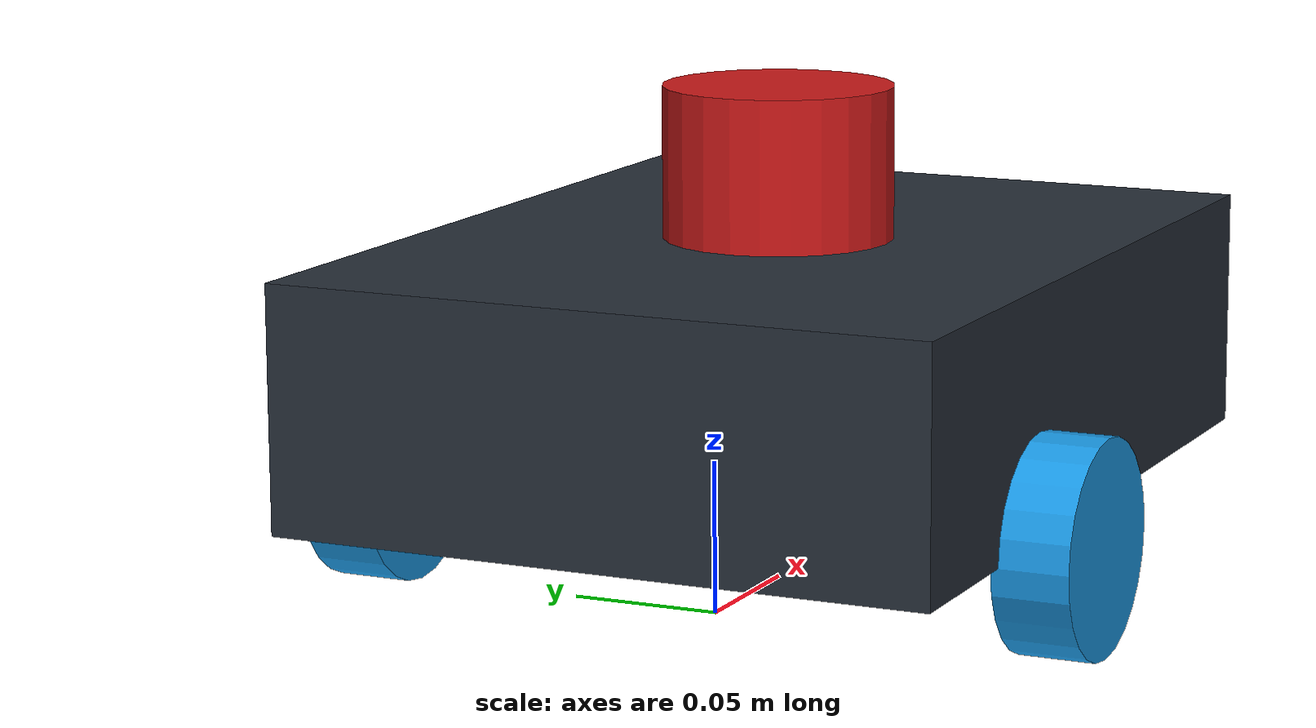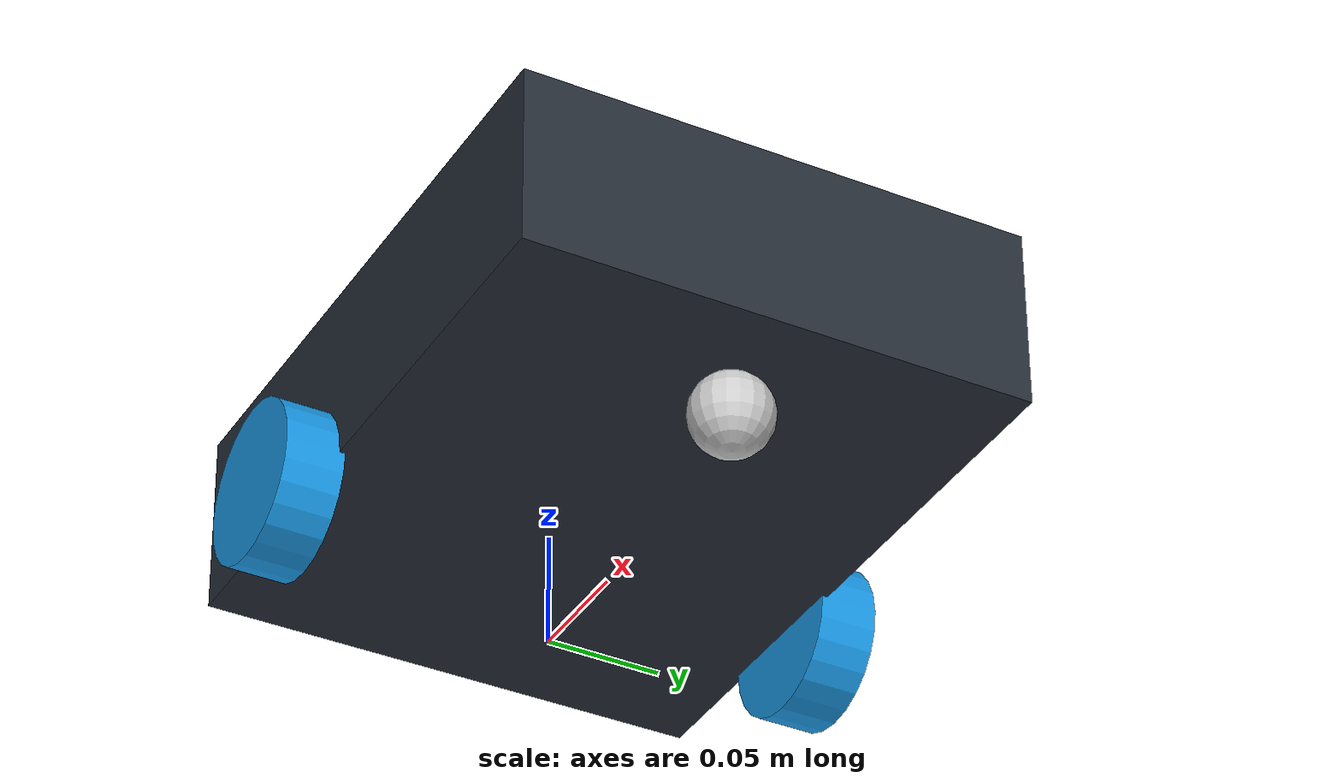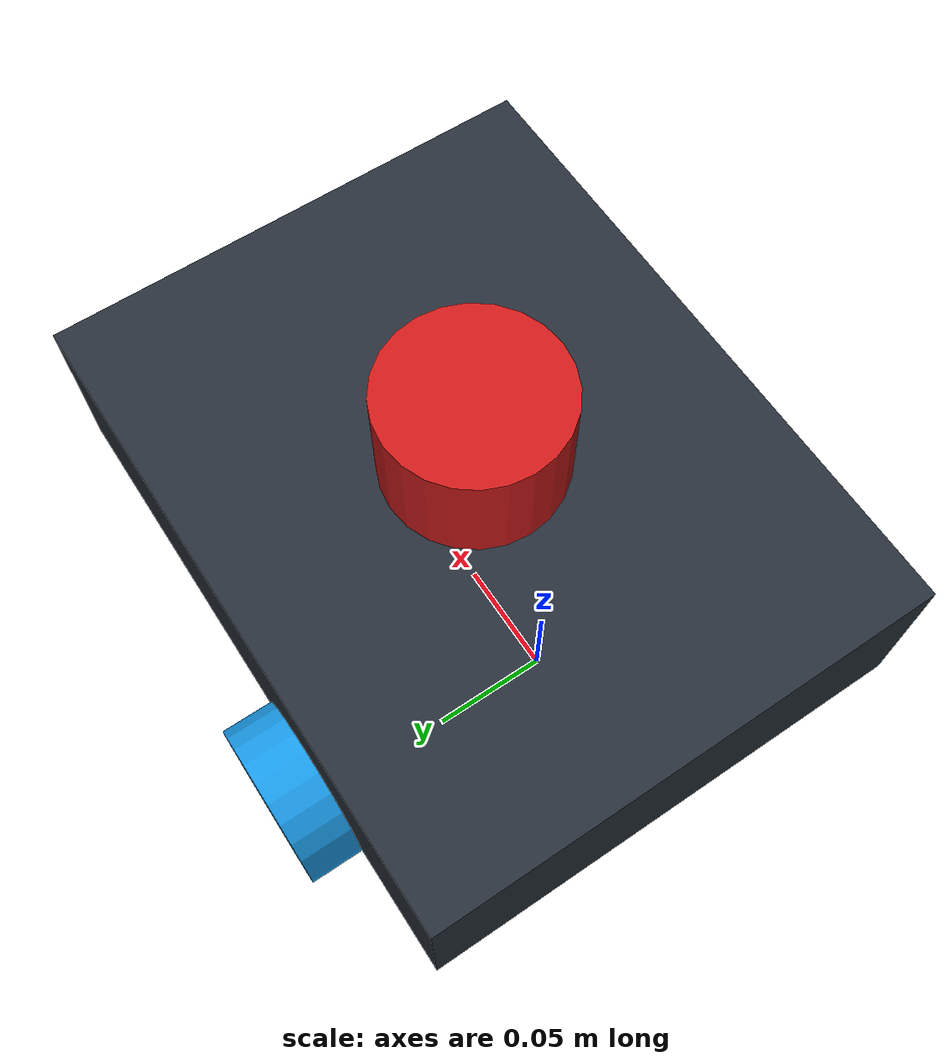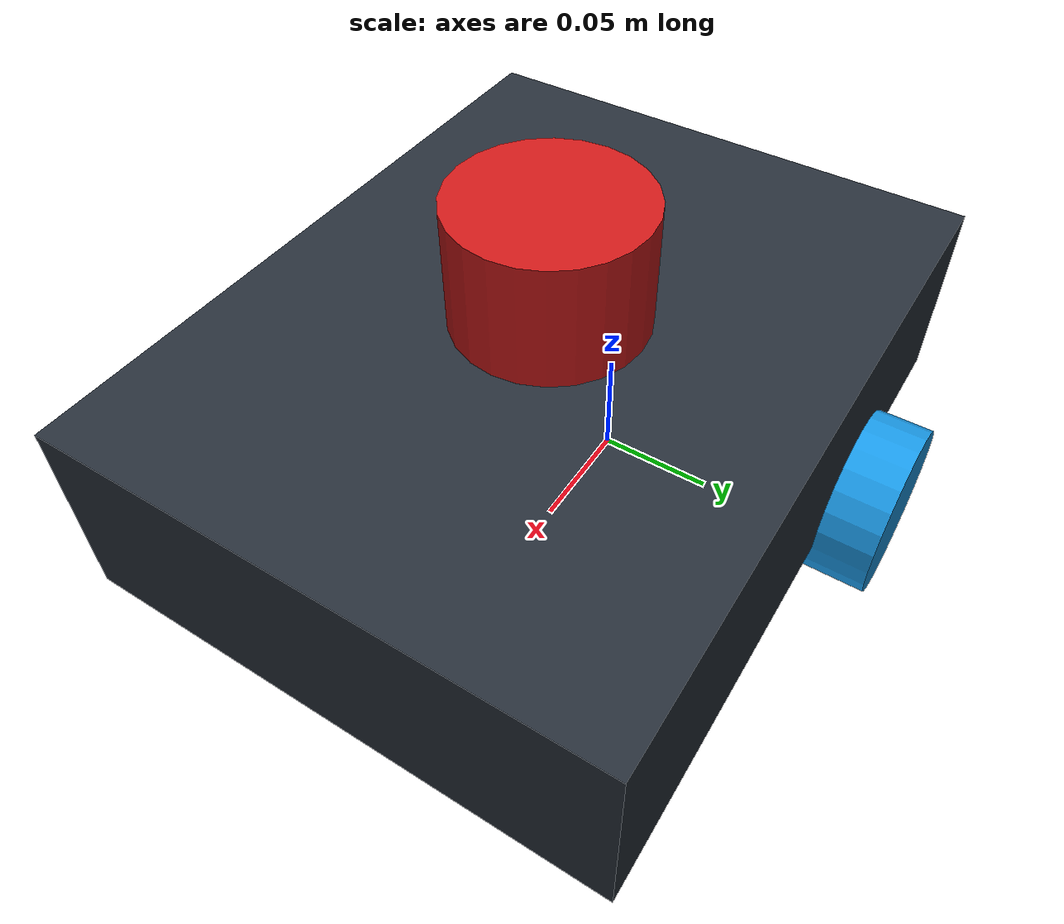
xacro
<?xml version="1.0"?>
<robot xmlns:xacro="http://www.ros.org/wiki/xacro" name="my_robot">

  <!-- Include Helper Macros -->
  <xacro:include filename="inertial_macros.xacro" />

  <!-- Include Core Chassis and Wheels -->
  <xacro:include filename="robot_core.xacro" />

  <!-- Include Gazebo Differential Drive Controller -->
  <xacro:include filename="gazebo_control.xacro" />

  <!-- Include Slamtec RPLiDAR Sensor -->
  <xacro:include filename="lidar.xacro" />

</robot>

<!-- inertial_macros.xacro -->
<robot xmlns:xacro="http://www.ros.org/wiki/xacro">

  <!-- Box Inertia Macro -->
  <xacro:macro name="inertial_box" params="mass x y z *origin">
    <inertial>
      <xacro:insert_block name="origin"/>
      <mass value="${mass}" />
      <inertia ixx="${(1/12) * mass * (y*y + z*z)}" ixy="0.0" ixz="0.0"
               iyy="${(1/12) * mass * (x*x + z*z)}" iyz="0.0"
               izz="${(1/12) * mass * (x*x + y*y)}" />
    </inertial>
  </xacro:macro>

  <!-- Cylinder Inertia Macro -->
  <xacro:macro name="inertial_cylinder" params="mass length radius *origin">
    <inertial>
      <xacro:insert_block name="origin"/>
      <mass value="${mass}" />
      <inertia ixx="${(1/12) * mass * (3*radius*radius + length*length)}" ixy="0.0" ixz="0.0"
               iyy="${(1/12) * mass * (3*radius*radius + length*length)}" iyz="0.0"
               izz="${(1/2) * mass * (radius*radius)}" />
    </inertial>
  </xacro:macro>

  <!-- Sphere Inertia Macro -->
  <xacro:macro name="inertial_sphere" params="mass radius *origin">
    <inertial>
      <xacro:insert_block name="origin"/>
      <mass value="${mass}" />
      <inertia ixx="${(2/5) * mass * (radius*radius)}" ixy="0.0" ixz="0.0"
               iyy="${(2/5) * mass * (radius*radius)}" iyz="0.0"
               izz="${(2/5) * mass * (radius*radius)}" />
    </inertial>
  </xacro:macro>

</robot>

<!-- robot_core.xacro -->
<robot xmlns:xacro="http://www.ros.org/wiki/xacro">

  <!-- Materials -->
  <material name="chassis_color">
    <color rgba="0.15 0.18 0.22 1.0"/>
  </material>

  <material name="wheel_color">
    <color rgba="0.1 0.6 0.9 1.0"/>
  </material>

  <material name="caster_color">
    <color rgba="0.8 0.8 0.8 1.0"/>
  </material>

  <!-- BASE FOOTPRINT LINK -->
  <link name="base_footprint"/>

  <joint name="base_footprint_joint" type="fixed">
    <parent link="base_footprint"/>
    <child link="base_link"/>
    <origin xyz="0 0 0.035" rpy="0 0 0"/>
  </joint>

  <!-- BASE LINK (CHASSIS) -->
  <link name="base_link">
    <visual>
      <origin xyz="0.05 0 0.04"/>
      <geometry>
        <box size="0.28 0.22 0.08"/>
      </geometry>
      <material name="chassis_color"/>
    </visual>
    <collision>
      <origin xyz="0.05 0 0.04"/>
      <geometry>
        <box size="0.28 0.22 0.08"/>
      </geometry>
    </collision>
    <xacro:inertial_box mass="1.5" x="0.28" y="0.22" z="0.08">
      <origin xyz="0.05 0 0.04" rpy="0 0 0"/>
    </xacro:inertial_box>
  </link>

  <gazebo reference="base_link">
    <material>Gazebo/DarkGrey</material>
  </gazebo>

  <!-- LEFT WHEEL -->
  <joint name="left_wheel_joint" type="continuous">
    <parent link="base_link"/>
    <child link="left_wheel_link"/>
    <origin xyz="0 0.12 0" rpy="-${pi/2} 0 0"/>
    <axis xyz="0 0 1"/>
  </joint>

  <link name="left_wheel_link">
    <visual>
      <geometry>
        <cylinder radius="0.035" length="0.025"/>
      </geometry>
      <material name="wheel_color"/>
    </visual>
    <collision>
      <geometry>
        <cylinder radius="0.035" length="0.025"/>
      </geometry>
    </collision>
    <xacro:inertial_cylinder mass="0.1" length="0.025" radius="0.035">
      <origin xyz="0 0 0" rpy="0 0 0"/>
    </xacro:inertial_cylinder>
  </link>

  <gazebo reference="left_wheel_link">
    <material>Gazebo/Blue</material>
    <mu1 value="1.0"/>
    <mu2 value="1.0"/>
  </gazebo>

  <!-- RIGHT WHEEL -->
  <joint name="right_wheel_joint" type="continuous">
    <parent link="base_link"/>
    <child link="right_wheel_link"/>
    <origin xyz="0 -0.12 0" rpy="${pi/2} 0 0"/>
    <axis xyz="0 0 -1"/>
  </joint>

  <link name="right_wheel_link">
    <visual>
      <geometry>
        <cylinder radius="0.035" length="0.025"/>
      </geometry>
      <material name="wheel_color"/>
    </visual>
    <collision>
      <geometry>
        <cylinder radius="0.035" length="0.025"/>
      </geometry>
    </collision>
    <xacro:inertial_cylinder mass="0.1" length="0.025" radius="0.035">
      <origin xyz="0 0 0" rpy="0 0 0"/>
    </xacro:inertial_cylinder>
  </link>

  <gazebo reference="right_wheel_link">
    <material>Gazebo/Blue</material>
    <mu1 value="1.0"/>
    <mu2 value="1.0"/>
  </gazebo>

  <!-- CASTER WHEEL (FRONT) -->
  <joint name="caster_wheel_joint" type="fixed">
    <parent link="base_link"/>
    <child link="caster_wheel_link"/>
    <origin xyz="0.15 0 -0.0175"/>
  </joint>

  <link name="caster_wheel_link">
    <visual>
      <geometry>
        <sphere radius="0.0175"/>
      </geometry>
      <material name="caster_color"/>
    </visual>
    <collision>
      <geometry>
        <sphere radius="0.0175"/>
      </geometry>
    </collision>
    <xacro:inertial_sphere mass="0.05" radius="0.0175">
      <origin xyz="0 0 0" rpy="0 0 0"/>
    </xacro:inertial_sphere>
  </link>

  <gazebo reference="caster_wheel_link">
    <material>Gazebo/White</material>
    <mu1 value="0.001"/>
    <mu2 value="0.001"/>
  </gazebo>

</robot>

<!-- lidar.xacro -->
<robot xmlns:xacro="http://www.ros.org/wiki/xacro">

  <material name="lidar_color">
    <color rgba="0.8 0.1 0.1 1.0"/>
  </material>

  <joint name="laser_joint" type="fixed">
    <parent link="base_link"/>
    <child link="laser_frame"/>
    <origin xyz="0.05 0 0.105" rpy="0 0 0"/>
  </joint>

  <link name="laser_frame">
    <visual>
      <geometry>
        <cylinder radius="0.038" length="0.05"/>
      </geometry>
      <material name="lidar_color"/>
    </visual>
    <collision>
      <geometry>
        <cylinder radius="0.038" length="0.05"/>
      </geometry>
    </collision>
    <xacro:inertial_cylinder mass="0.12" length="0.05" radius="0.038">
      <origin xyz="0 0 0" rpy="0 0 0"/>
    </xacro:inertial_cylinder>
  </link>

  <gazebo reference="laser_frame">
    <material>Gazebo/Red</material>
    <sensor name="laser_frame" type="gpu_lidar">
      <pose>0 0 0 0 0 0</pose>
      <visualize>true</visualize>
      <update_rate>10</update_rate>
      <topic>scan</topic>
      <frame_id>laser_frame</frame_id>
      <lidar>
        <scan>
          <horizontal>
            <samples>360</samples>
            <resolution>1</resolution>
            <min_angle>-3.14159265</min_angle>
            <max_angle>3.14159265</max_angle>
          </horizontal>
        </scan>
        <range>
          <min>0.15</min>
          <max>12.0</max>
          <resolution>0.01</resolution>
        </range>
        <noise>
          <type>gaussian</type>
          <mean>0.0</mean>
          <stddev>0.01</stddev>
        </noise>
      </lidar>
    </sensor>
  </gazebo>

</robot>
